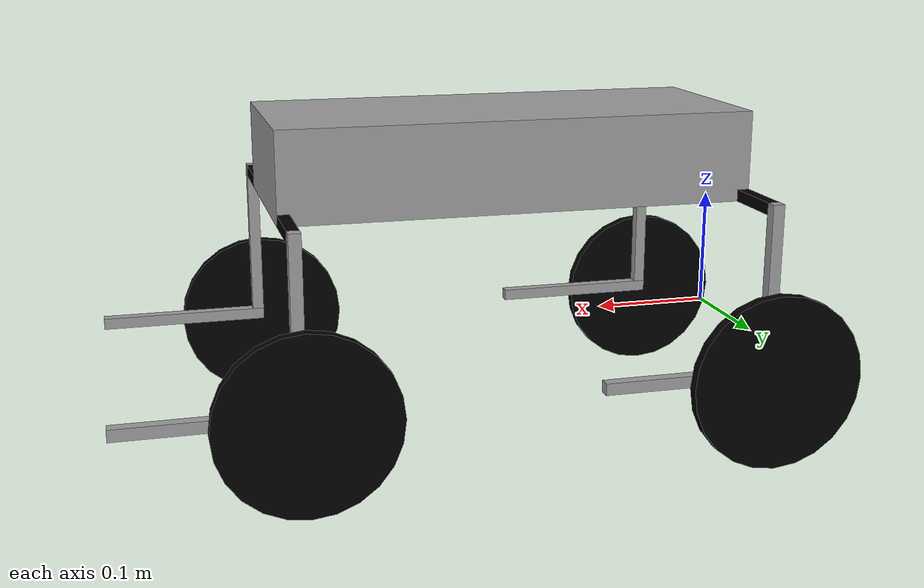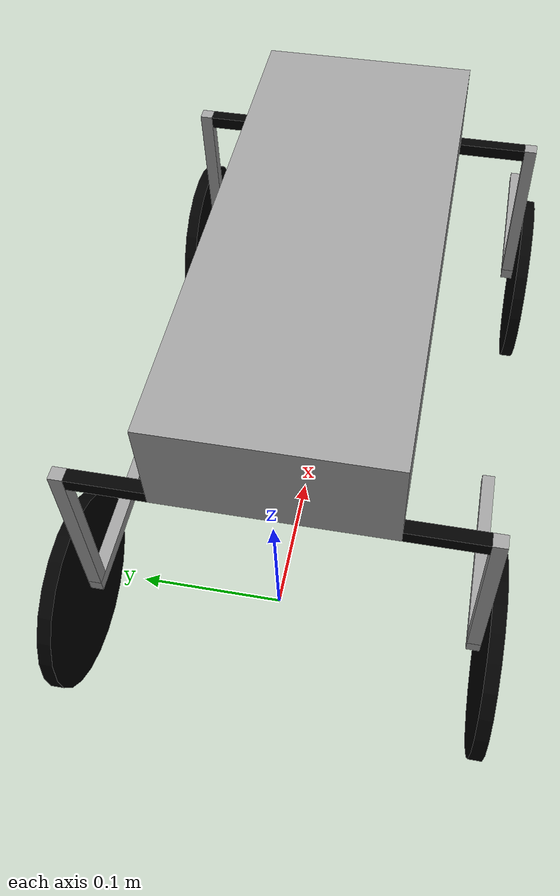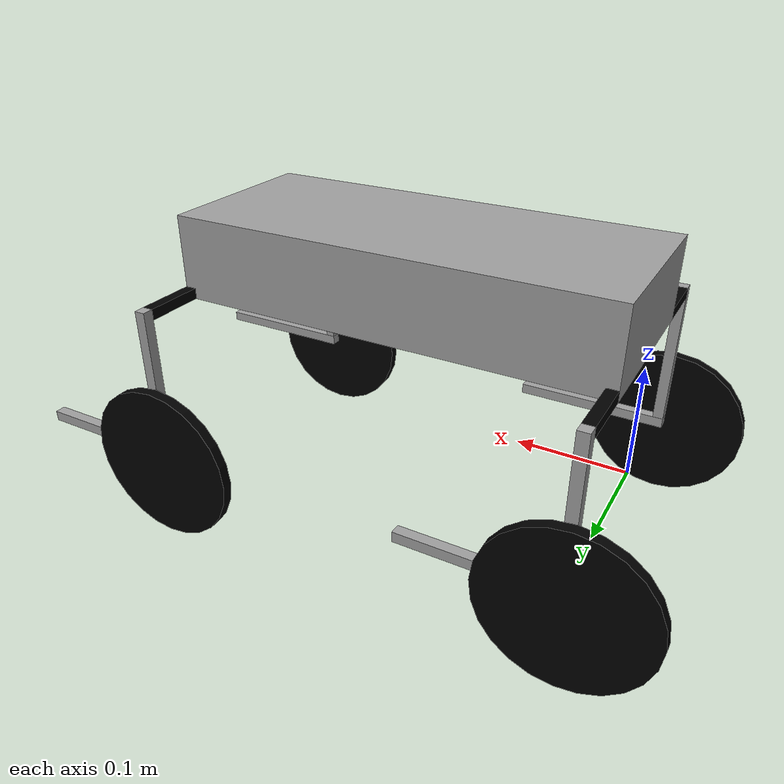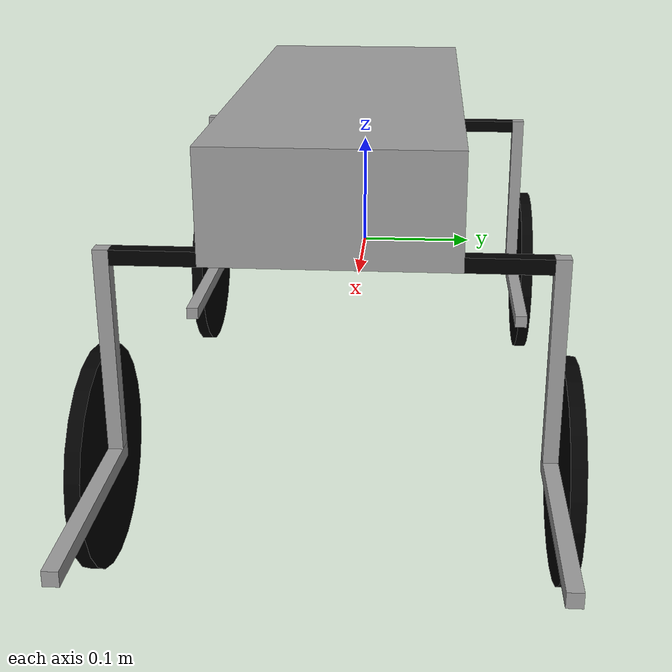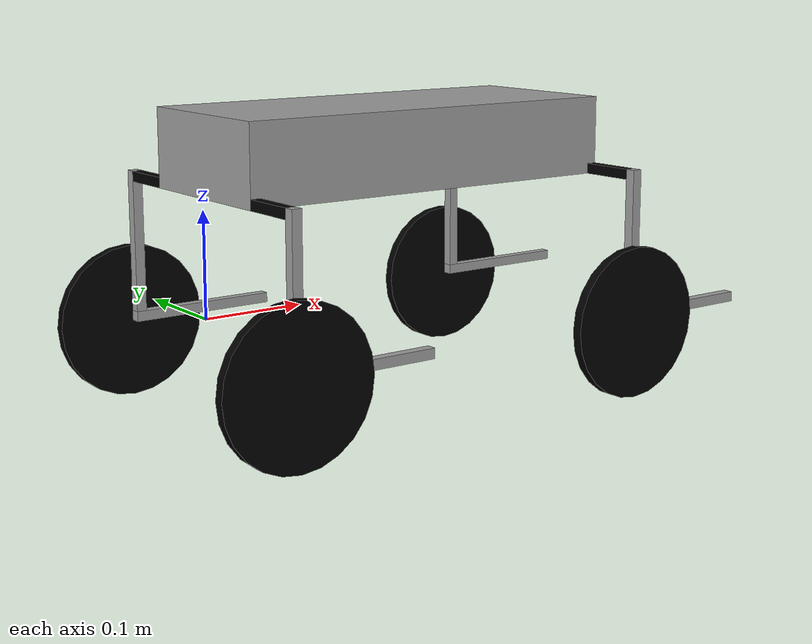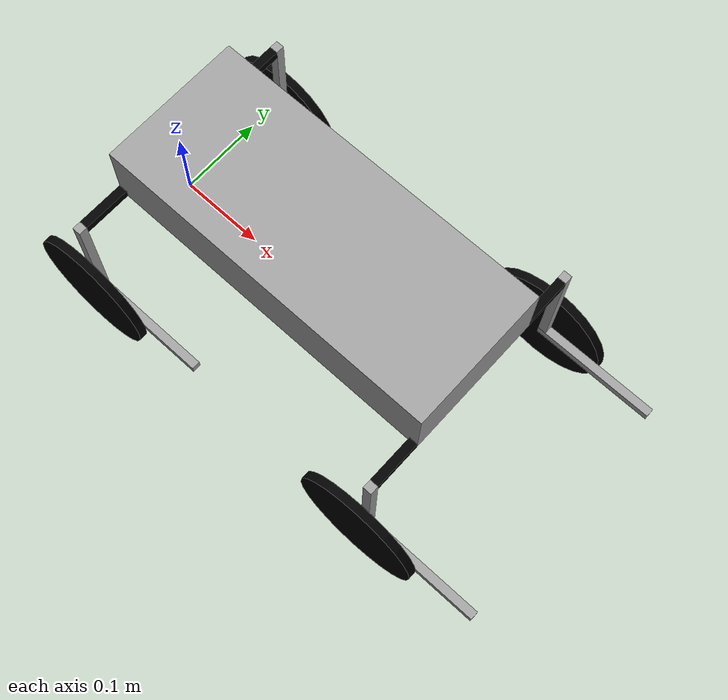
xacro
<?xml version="1.0"?>
<robot xmlns:xacro="http://www.ros.org/wiki/xacro">

<!-- Include the inertial macro-->
<xacro:include filename="inertial_macros.xacro"/>

<material name="orange">
    <color rgba="1 0.3 0.1 1"/>
</material>

<material name="red">
    <color rgba="0.62 0.62 0.62 1"/>
</material>

<material name="black">
    <color rgba="0 0 0 1"/>
</material>

<material name="white">
    <color rgba="1 1 1 1"/>
</material>

<xacro:property name="c_length" value="0.3996"/>
<xacro:property name="c_width" value="0.1651"/>
<xacro:property name="c_depth" value="0.0762"/>

<xacro:property name="h_length" value="0.055"/>
<xacro:property name="h_width" value="0.01"/>
<xacro:property name="h_depth" value="0.01"/>

<xacro:property name="ul_length" value="0.139"/>
<xacro:property name="ul_width" value="0.01"/>
<xacro:property name="ul_depth" value="0.01"/>

<xacro:property name="ll_length" value="0.148"/>
<xacro:property name="ll_width" value="0.01"/>
<xacro:property name="ll_depth" value="0.01"/>

<xacro:property name="w_rad" value="0.075"/>
<xacro:property name="w_length" value="0.01"/>

<xacro:property name="c_mass" value="1.0"/>
<xacro:property name="h_mass" value="0.1"/>
<xacro:property name="ul_mass" value="0.5"/>
<xacro:property name="ll_mass" value="0.25"/>
<xacro:property name="w_mass" value="0.15"/>

<link name="base_link"/>

<joint name="chassis_joint" type="fixed">
    <parent link="base_link"/>
    <child link="chassis"/>
    <origin xyz="${c_length/2} 0 0.11"/>
</joint>

<!-- Chassis -->

<link name="chassis">
    <visual>
        <origin xyz="0.0 0.0 ${c_depth/2}"/>
        <geometry>
            <box size="${c_length} ${c_width} ${c_depth}"/>
        </geometry>
        <material name="red"/>
    </visual>
    <collision>
        <origin xyz="0.0 0.0 ${c_depth/2}"/>
        <geometry>
            <box size="${c_length} ${c_width} ${c_depth}"/>
        </geometry>
    </collision>
    <xacro:inertial_box mass="${c_mass}" x="${c_length}" y="${c_width}" z="${c_depth}">
        <origin xyz="0.0 0.0 ${c_depth/2}" rpy="0.0 0.0 0.0"/>
    </xacro:inertial_box>
</link>

<gazebo reference="chassis">
    <material>Gazebo/Red</material>
</gazebo>

<!-- Front left leg-->

<joint name="fl_hip_joint" type="revolute">
    <origin xyz="${c_length/2 - h_width} ${c_width/2} 0.0" rpy="0.0 0.0 0.0"/>
    <parent link="chassis"/>
    <child link="fl_hip_link"/>
    <axis xyz="1.0 0.0 0.0"/>
    <limit lower="${-pi/2}" upper="${pi/2}" effort="100.0" velocity="3.0"/>
</joint>

<link name="fl_hip_link">
    <visual>
        <origin xyz="${h_width/2} ${h_length/2} ${h_depth/2}" rpy="0.0 0.0 0.0"/>
        <geometry>
            <box size="${h_width} ${h_length} ${h_depth}"/>
        </geometry>
        <material name="black"/>
    </visual>
    <collision>
        <origin xyz="${h_width/2} ${h_length/2} ${h_depth/2}" rpy="0.0 0.0 0.0"/>
        <geometry>
            <box size="${h_width} ${h_length} ${h_depth}"/>
        </geometry>
    </collision>
    <xacro:inertial_box mass="${h_mass}" x="${h_width}" y="${h_length}" z="${h_depth}">
        <origin xyz="${h_width/2} ${h_length/2} ${h_depth/2}" rpy="0.0 0.0 0.0"/>
    </xacro:inertial_box>
</link>

<gazebo reference="fl_hip_link">
    <material>Gazebo/Black</material>
</gazebo>

<joint name="fl_ul_joint" type="revolute">
    <origin xyz="0.0 ${h_length} 0.0" rpy="0.0 0.0 0.0"/>
    <parent link="fl_hip_link"/>
    <child link="fl_ul_link"/>
    <axis xyz="0.0 1.0 0.0"/>
    <limit lower="${-pi/2}" upper="${pi/2}" effort="100.0" velocity="3.0"/>
</joint>

<link name="fl_ul_link">
    <visual>
        <origin xyz="${h_width/2} ${ul_depth/2} ${-ul_length/2 + h_depth}" rpy="0.0 0.0 0.0"/>
        <geometry>
            <box size="${ul_width} ${ul_depth} ${ul_length}"/>
        </geometry>
        <material name="red"/>
    </visual>
    <collision>
        <origin xyz="${h_width/2} ${ul_depth/2} ${-ul_length/2 + h_depth}" rpy="0.0 0.0 0.0"/>
        <geometry>
            <box size="${ul_width} ${ul_depth} ${ul_length}"/>
        </geometry>
    </collision>
    <xacro:inertial_box mass="${ul_mass}" x="${ul_width}" y="${ul_depth}" z="${ul_length}">
        <origin xyz="${h_width/2} ${ul_depth/2} ${-ul_length/2 + h_depth}" rpy="0.0 0.0 0.0"/>
    </xacro:inertial_box>
</link>

<gazebo reference="fl_ul_link">
    <material>Gazebo/Red</material>
</gazebo>

<joint name="fl_ll_joint" type="revolute">
    <origin xyz="0.0 0.0 ${-ul_length}" rpy="0.0 0.0 0.0"/>
    <parent link="fl_ul_link"/>
    <child link="fl_ll_link"/>
    <axis xyz="0.0 1.0 0.0"/>
    <limit lower="${-pi/2}" upper="${pi/2}" effort="100.0" velocity="3.0"/>
</joint>

<link name="fl_ll_link">
    <visual>
        <origin xyz="${ll_length/2} ${ll_width/2} ${ll_depth/2}" rpy="0.0 0.0 0.0"/>
        <geometry>
            <box size="${ll_length} ${ll_width} ${ll_depth}"/>
        </geometry>
        <material name="red"/>
    </visual>
    <collision>
        <origin xyz="${ll_length/2} ${ll_width/2} ${ll_depth/2}" rpy="0.0 0.0 0.0"/>
        <geometry>
            <box size="${ll_length} ${ll_width} ${ll_depth}"/>
        </geometry>
    </collision>
    <xacro:inertial_box mass="${ll_mass}" x="${ll_length}" y="${ll_width}" z="${ll_depth}">
        <origin xyz="${ll_length/2} ${ll_width/2} ${ll_depth/2}" rpy="0.0 0.0 0.0"/>
    </xacro:inertial_box>
</link>

<gazebo reference="fl_ll_link">
    <material>Gazebo/Black</material>
</gazebo>

<joint name="fl_wheel_joint" type="revolute">
    <origin xyz="0.0 ${ll_width} 0.0" rpy="0.0 0.0 0.0"/>
    <parent link="fl_ll_link"/>
    <child link="fl_wheel_link"/>
    <axis xyz="0.0 1.0 0.0"/>
    <limit lower="0.0" upper="${2*pi}" effort="100.0" velocity="3.0"/>
</joint>

<link name="fl_wheel_link">
    <visual>
        <origin xyz="0.0 ${w_length/2} 0.0" rpy="${pi/2} 0.0 0.0"/>
        <geometry>
            <cylinder radius="${w_rad}" length="${w_length}"/>
        </geometry>
        <material name="black"/>
    </visual>
    <collision>
        <origin xyz="0.0 ${w_length/2} 0.0" rpy="${pi/2} 0.0 0.0"/>
        <geometry>
            <cylinder radius="${w_rad}" length="${w_length}"/>
        </geometry>
    </collision>
    <xacro:inertial_cylinder mass="${w_mass}" length="${w_length}" radius="${w_rad}">
        <origin xyz="0.0 ${w_length/2} 0.0" rpy="${pi/2} 0.0 0.0"/>
    </xacro:inertial_cylinder>
</link>

<gazebo reference="fl_wheel_link">
    <material>Gazebo/White</material>
</gazebo>

<!-- Back left leg-->

<joint name="bl_hip_joint" type="revolute">
    <origin xyz="${-c_length/2} ${c_width/2} 0.0" rpy="0.0 0.0 0.0"/>
    <parent link="chassis"/>
    <child link="bl_hip_link"/>
    <axis xyz="1.0 0.0 0.0"/>
    <limit lower="${-pi/2}" upper="${pi/2}" effort="100.0" velocity="3.0"/>
</joint>

<link name="bl_hip_link">
    <visual>
        <origin xyz="${h_width/2} ${h_length/2} ${h_depth/2}" rpy="0.0 0.0 0.0"/>
        <geometry>
            <box size="${h_width} ${h_length} ${h_depth}"/>
        </geometry>
        <material name="black"/>
    </visual>
    <collision>
        <origin xyz="${h_width/2} ${h_length/2} ${h_depth/2}" rpy="0.0 0.0 0.0"/>
        <geometry>
            <box size="${h_width} ${h_length} ${h_depth}"/>
        </geometry>
    </collision>
    <xacro:inertial_box mass="${h_mass}" x="${h_width}" y="${h_length}" z="${h_depth}">
        <origin xyz="${h_width/2} ${h_length/2} ${h_depth/2}" rpy="0.0 0.0 0.0"/>
    </xacro:inertial_box>
</link>

<gazebo reference="bl_hip_link">
    <material>Gazebo/Black</material>
</gazebo>

<joint name="bl_ul_joint" type="revolute">
    <origin xyz="0.0 ${h_length} 0.0" rpy="0.0 0.0 0.0"/>
    <parent link="bl_hip_link"/>
    <child link="bl_ul_link"/>
    <axis xyz="0.0 1.0 0.0"/>
    <limit lower="${-pi/2}" upper="${pi/2}" effort="100.0" velocity="3.0"/>
</joint>

<link name="bl_ul_link">
    <visual>
        <origin xyz="${h_width/2} ${ul_depth/2} ${-ul_length/2 + h_depth}" rpy="0.0 0.0 0.0"/>
        <geometry>
            <box size="${ul_width} ${ul_depth} ${ul_length}"/>
        </geometry>
        <material name="red"/>
    </visual>
    <collision>
        <origin xyz="${h_width/2} ${ul_depth/2} ${-ul_length/2 + h_depth}" rpy="0.0 0.0 0.0"/>
        <geometry>
            <box size="${ul_width} ${ul_depth} ${ul_length}"/>
        </geometry>
    </collision>
    <xacro:inertial_box mass="${ul_mass}" x="${ul_width}" y="${ul_depth}" z="${ul_length}">
        <origin xyz="${h_width/2} ${ul_depth/2} ${-ul_length/2 + h_depth}" rpy="0.0 0.0 0.0"/>
    </xacro:inertial_box>
</link>

<gazebo reference="bl_ul_link">
    <material>Gazebo/Red</material>
</gazebo>

<joint name="bl_ll_joint" type="revolute">
    <origin xyz="0.0 0.0 ${-ul_length}" rpy="0.0 0.0 0.0"/>
    <parent link="bl_ul_link"/>
    <child link="bl_ll_link"/>
    <axis xyz="0.0 1.0 0.0"/>
    <limit lower="${-pi/2}" upper="${pi/2}" effort="100.0" velocity="3.0"/>
</joint>

<link name="bl_ll_link">
    <visual>
        <origin xyz="${ll_length/2} ${ll_width/2} ${ll_depth/2}" rpy="0.0 0.0 0.0"/>
        <geometry>
            <box size="${ll_length} ${ll_width} ${ll_depth}"/>
        </geometry>
        <material name="red"/>
    </visual>
    <collision>
        <origin xyz="${ll_length/2} ${ll_width/2} ${ll_depth/2}" rpy="0.0 0.0 0.0"/>
        <geometry>
            <box size="${ll_length} ${ll_width} ${ll_depth}"/>
        </geometry>
    </collision>
    <xacro:inertial_box mass="${ll_mass}" x="${ll_length}" y="${ll_width}" z="${ll_depth}">
        <origin xyz="${ll_length/2} ${ll_width/2} ${ll_depth/2}" rpy="0.0 0.0 0.0"/>
    </xacro:inertial_box>
</link>

<gazebo reference="bl_ll_link">
    <material>Gazebo/Black</material>
</gazebo>

<joint name="bl_wheel_joint" type="revolute">
    <origin xyz="0.0 ${ll_width} 0.0" rpy="0.0 0.0 0.0"/>
    <parent link="bl_ll_link"/>
    <child link="bl_wheel_link"/>
    <axis xyz="0.0 1.0 0.0"/>
    <limit lower="0.0" upper="${2*pi}" effort="100.0" velocity="3.0"/>
</joint>

<link name="bl_wheel_link">
    <visual>
        <origin xyz="0.0 ${w_length/2} 0.0" rpy="${pi/2} 0.0 0.0"/>
        <geometry>
            <cylinder radius="${w_rad}" length="${w_length}"/>
        </geometry>
        <material name="black"/>
    </visual>
    <collision>
        <origin xyz="0.0 ${w_length/2} 0.0" rpy="${pi/2} 0.0 0.0"/>
        <geometry>
            <cylinder radius="${w_rad}" length="${w_length}"/>
        </geometry>
    </collision>
    <xacro:inertial_cylinder mass="${w_mass}" length="${w_length}" radius="${w_rad}">
        <origin xyz="0.0 ${w_length/2} 0.0" rpy="${pi/2} 0.0 0.0"/>
    </xacro:inertial_cylinder>
</link>

<gazebo reference="bl_wheel_link">
    <material>Gazebo/White</material>
</gazebo>

<!-- Front right leg-->

<joint name="fr_hip_joint" type="revolute">
    <origin xyz="${c_length/2 - h_width} ${-c_width/2} 0.0" rpy="0.0 0.0 0.0"/>
    <parent link="chassis"/>
    <child link="fr_hip_link"/>
    <axis xyz="-1.0 0.0 0.0"/>
    <limit lower="${-pi/2}" upper="${pi/2}" effort="100.0" velocity="3.0"/>
</joint>

<link name="fr_hip_link">
    <visual>
        <origin xyz="${h_width/2} ${-h_length/2} ${h_depth/2}" rpy="0.0 0.0 0.0"/>
        <geometry>
            <box size="${h_width} ${h_length} ${h_depth}"/>
        </geometry>
        <material name="black"/>
    </visual>
    <collision>
        <origin xyz="${h_width/2} ${-h_length/2} ${h_depth/2}" rpy="0.0 0.0 0.0"/>
        <geometry>
            <box size="${h_width} ${h_length} ${h_depth}"/>
        </geometry>
    </collision>
    <xacro:inertial_box mass="${h_mass}" x="${h_width}" y="${h_length}" z="${h_depth}">
        <origin xyz="${h_width/2} ${-h_length/2} ${h_depth/2}" rpy="0.0 0.0 0.0"/>
    </xacro:inertial_box>
</link>

<gazebo reference="fr_hip_link">
    <material>Gazebo/Black</material>
</gazebo>

<joint name="fr_ul_joint" type="revolute">
    <origin xyz="0.0 ${-h_length} 0.0" rpy="0.0 0.0 0.0"/>
    <parent link="fr_hip_link"/>
    <child link="fr_ul_link"/>
    <axis xyz="0.0 1.0 0.0"/>
    <limit lower="${-pi/2}" upper="${pi/2}" effort="100.0" velocity="3.0"/>
</joint>

<link name="fr_ul_link">
    <visual>
        <origin xyz="${h_width/2} ${-ul_depth/2} ${-ul_length/2 + h_depth}" rpy="0.0 0.0 0.0"/>
        <geometry>
            <box size="${ul_width} ${ul_depth} ${ul_length}"/>
        </geometry>
        <material name="red"/>
    </visual>
    <collision>
        <origin xyz="${h_width/2} ${-ul_depth/2} ${-ul_length/2 + h_depth}" rpy="0.0 0.0 0.0"/>
        <geometry>
            <box size="${ul_width} ${ul_depth} ${ul_length}"/>
        </geometry>
    </collision>
    <xacro:inertial_box mass="${ul_mass}" x="${ul_width}" y="${ul_depth}" z="${ul_length}">
        <origin xyz="${h_width/2} ${-ul_depth/2} ${-ul_length/2 + h_depth}" rpy="0.0 0.0 0.0"/>
    </xacro:inertial_box>
</link>

<gazebo reference="fr_ul_link">
    <material>Gazebo/Red</material>
</gazebo>

<joint name="fr_ll_joint" type="revolute">
    <origin xyz="0.0 0.0 ${-ul_length}" rpy="0.0 0.0 0.0"/>
    <parent link="fr_ul_link"/>
    <child link="fr_ll_link"/>
    <axis xyz="0.0 1.0 0.0"/>
    <limit lower="${-pi/2}" upper="${pi/2}" effort="100.0" velocity="3.0"/>
</joint>

<link name="fr_ll_link">
    <visual>
        <origin xyz="${ll_length/2} ${-ll_width/2} ${ll_depth/2}" rpy="0.0 0.0 0.0"/>
        <geometry>
            <box size="${ll_length} ${ll_width} ${ll_depth}"/>
        </geometry>
        <material name="red"/>
    </visual>
    <collision>
        <origin xyz="${ll_length/2} ${-ll_width/2} ${ll_depth/2}" rpy="0.0 0.0 0.0"/>
        <geometry>
            <box size="${ll_length} ${ll_width} ${ll_depth}"/>
        </geometry>
    </collision>
    <xacro:inertial_box mass="${ll_mass}" x="${ll_length}" y="${ll_width}" z="${ll_depth}">
        <origin xyz="${ll_length/2} ${-ll_width/2} ${ll_depth/2}" rpy="0.0 0.0 0.0"/>
    </xacro:inertial_box>
</link>

<gazebo reference="fr_ll_link">
    <material>Gazebo/Black</material>
</gazebo>

<joint name="fr_wheel_joint" type="revolute">
    <origin xyz="0.0 ${-ll_width} 0.0" rpy="0.0 0.0 0.0"/>
    <parent link="fr_ll_link"/>
    <child link="fr_wheel_link"/>
    <axis xyz="0.0 -1.0 0.0"/>
    <limit lower="0.0" upper="${2*pi}" effort="100.0" velocity="3.0"/>
</joint>

<link name="fr_wheel_link">
    <visual>
        <origin xyz="0.0 ${-w_length/2} 0.0" rpy="${pi/2} 0.0 0.0"/>
        <geometry>
            <cylinder radius="${w_rad}" length="${w_length}"/>
        </geometry>
        <material name="black"/>
    </visual>
    <collision>
        <origin xyz="0.0 ${-w_length/2} 0.0" rpy="${pi/2} 0.0 0.0"/>
        <geometry>
            <cylinder radius="${w_rad}" length="${w_length}"/>
        </geometry>
    </collision>
    <xacro:inertial_cylinder mass="${w_mass}" length="${w_length}" radius="${w_rad}">
        <origin xyz="0.0 ${-w_length/2} 0.0" rpy="${pi/2} 0.0 0.0"/>
    </xacro:inertial_cylinder>
</link>

<gazebo reference="fr_wheel_link">
    <material>Gazebo/White</material>
</gazebo>

<!-- Back right leg-->

<joint name="br_hip_joint" type="revolute">
    <origin xyz="${-c_length/2} ${-c_width/2} 0.0" rpy="0.0 0.0 0.0"/>
    <parent link="chassis"/>
    <child link="br_hip_link"/>
    <axis xyz="-1.0 0.0 0.0"/>
    <limit lower="${-pi/2}" upper="${pi/2}" effort="100.0" velocity="3.0"/>
</joint>

<link name="br_hip_link">
    <visual>
        <origin xyz="${h_width/2} ${-h_length/2} ${h_depth/2}" rpy="0.0 0.0 0.0"/>
        <geometry>
            <box size="${h_width} ${h_length} ${h_depth}"/>
        </geometry>
        <material name="black"/>
    </visual>
    <collision>
        <origin xyz="${h_width/2} ${-h_length/2} ${h_depth/2}" rpy="0.0 0.0 0.0"/>
        <geometry>
            <box size="${h_width} ${h_length} ${h_depth}"/>
        </geometry>
    </collision>
    <xacro:inertial_box mass="${h_mass}" x="${h_width}" y="${h_length}" z="${h_depth}">
        <origin xyz="${h_width/2} ${-h_length/2} ${h_depth/2}" rpy="0.0 0.0 0.0"/>
    </xacro:inertial_box>
</link>

<gazebo reference="br_hip_link">
    <material>Gazebo/Black</material>
</gazebo>

<joint name="br_ul_joint" type="revolute">
    <origin xyz="0.0 ${-h_length} 0.0" rpy="0.0 0.0 0.0"/>
    <parent link="br_hip_link"/>
    <child link="br_ul_link"/>
    <axis xyz="0.0 1.0 0.0"/>
    <limit lower="${-pi/2}" upper="${pi/2}" effort="100.0" velocity="3.0"/>
</joint>

<link name="br_ul_link">
    <visual>
        <origin xyz="${h_width/2} ${-ul_depth/2} ${-ul_length/2 + h_depth}" rpy="0.0 0.0 0.0"/>
        <geometry>
            <box size="${ul_width} ${ul_depth} ${ul_length}"/>
        </geometry>
        <material name="red"/>
    </visual>
    <collision>
        <origin xyz="${h_width/2} ${-ul_depth/2} ${-ul_length/2 + h_depth}" rpy="0.0 0.0 0.0"/>
        <geometry>
            <box size="${ul_width} ${ul_depth} ${ul_length}"/>
        </geometry>
    </collision>
    <xacro:inertial_box mass="${ul_mass}" x="${ul_width}" y="${ul_depth}" z="${ul_length}">
        <origin xyz="${h_width/2} ${-ul_depth/2} ${-ul_length/2 + h_depth}" rpy="0.0 0.0 0.0"/>
    </xacro:inertial_box>
</link>

<gazebo reference="br_ul_link">
    <material>Gazebo/Red</material>
</gazebo>

<joint name="br_ll_joint" type="revolute">
    <origin xyz="0.0 0.0 ${-ul_length}" rpy="0.0 0.0 0.0"/>
    <parent link="br_ul_link"/>
    <child link="br_ll_link"/>
    <axis xyz="0.0 1.0 0.0"/>
    <limit lower="${-pi/2}" upper="${pi/2}" effort="100.0" velocity="3.0"/>
</joint>

<link name="br_ll_link">
    <visual>
        <origin xyz="${ll_length/2} ${-ll_width/2} ${ll_depth/2}" rpy="0.0 0.0 0.0"/>
        <geometry>
            <box size="${ll_length} ${ll_width} ${ll_depth}"/>
        </geometry>
        <material name="red"/>
    </visual>
    <collision>
        <origin xyz="${ll_length/2} ${-ll_width/2} ${ll_depth/2}" rpy="0.0 0.0 0.0"/>
        <geometry>
            <box size="${ll_length} ${ll_width} ${ll_depth}"/>
        </geometry>
    </collision>
    <xacro:inertial_box mass="${ll_mass}" x="${ll_length}" y="${ll_width}" z="${ll_depth}">
        <origin xyz="${ll_length/2} ${-ll_width/2} ${ll_depth/2}" rpy="0.0 0.0 0.0"/>
    </xacro:inertial_box>
</link>

<gazebo reference="br_ll_link">
    <material>Gazebo/Black</material>
</gazebo>

<joint name="br_wheel_joint" type="revolute">
    <origin xyz="0.0 ${-ll_width} 0.0" rpy="0.0 0.0 0.0"/>
    <parent link="br_ll_link"/>
    <child link="br_wheel_link"/>
    <axis xyz="0.0 -1.0 0.0"/>
    <limit lower="0.0" upper="${2*pi}" effort="100.0" velocity="3.0"/>
</joint>

<link name="br_wheel_link">
    <visual>
        <origin xyz="0.0 ${-w_length/2} 0.0" rpy="${pi/2} 0.0 0.0"/>
        <geometry>
            <cylinder radius="${w_rad}" length="${w_length}"/>
        </geometry>
        <material name="black"/>
    </visual>
    <collision>
        <origin xyz="0.0 ${-w_length/2} 0.0" rpy="${pi/2} 0.0 0.0"/>
        <geometry>
            <cylinder radius="${w_rad}" length="${w_length}"/>
        </geometry>
    </collision>
    <xacro:inertial_cylinder mass="${w_mass}" length="${w_length}" radius="${w_rad}">
        <origin xyz="0.0 ${-w_length/2} 0.0" rpy="${pi/2} 0.0 0.0"/>
    </xacro:inertial_cylinder>
</link>

<gazebo reference="br_wheel_link">
    <material>Gazebo/White</material>
</gazebo>

</robot>
